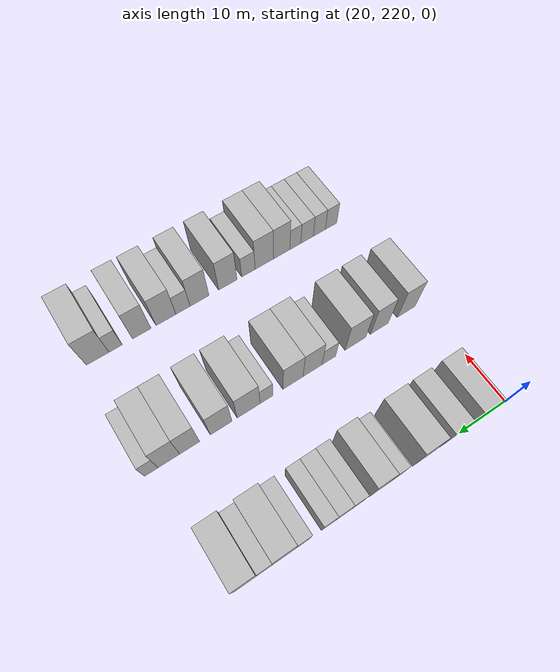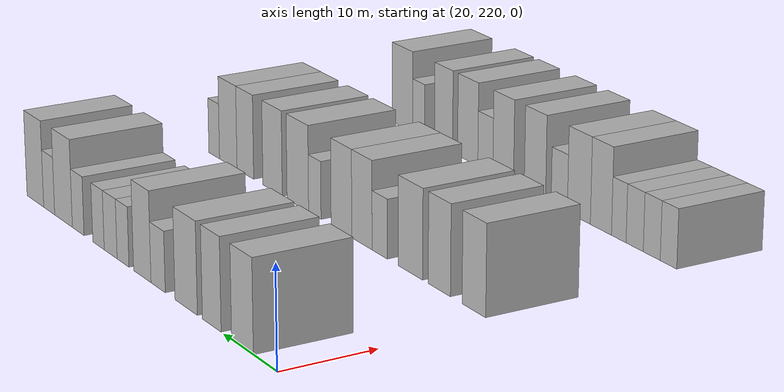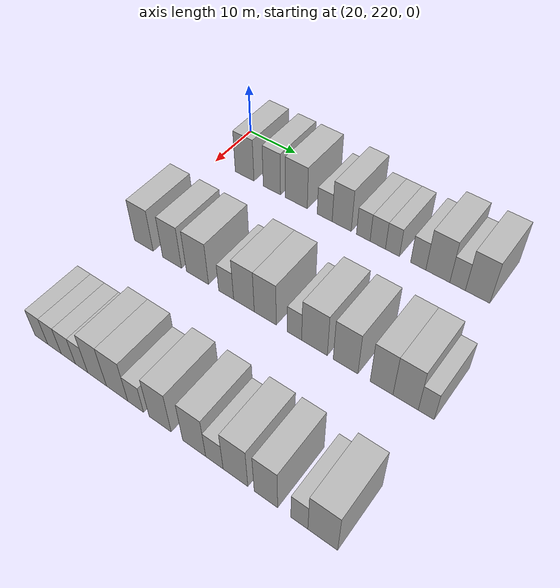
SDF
<sdf version="1.6">
 <world name="default">
  <model name="building_146">
   <static>1</static>
   <pose>25.0000 226.4195 0 0.000000 0.000000 0.000000</pose>
   <link name="link">
    <pose>0 0 4.50 0 0 0</pose>
    <collision name="collision"><geometry><box><size>10.0000 4.0685 9.0000</size></box></geometry></collision>
    <visual name="visual">
     <cast_shadows>0</cast_shadows>
     <geometry><box><size>10.0000 4.0685 9.0000</size></box></geometry>
     <material>
      <script>
       <uri>model://HANNAS_wall/materials/scripts</uri>
       <uri>model://HANNAS_wall/materials/textures</uri>
       <name>vrc/HANNAS_wall</name>
      </script>
     </material>
    </visual>
   </link>
  </model>
  <model name="building_147">
   <static>1</static>
   <pose>25.0000 232.2710 0 0.000000 0.000000 0.000000</pose>
   <link name="link">
    <pose>0 0 4.50 0 0 0</pose>
    <collision name="collision"><geometry><box><size>10.0000 3.6345 9.0000</size></box></geometry></collision>
    <visual name="visual">
     <cast_shadows>0</cast_shadows>
     <geometry><box><size>10.0000 3.6345 9.0000</size></box></geometry>
     <material>
      <script>
       <uri>model://HANNAS_wall/materials/scripts</uri>
       <uri>model://HANNAS_wall/materials/textures</uri>
       <name>vrc/HANNAS_wall</name>
      </script>
     </material>
    </visual>
   </link>
  </model>
  <model name="building_148">
   <static>1</static>
   <pose>25.0000 237.3366 0 0.000000 0.000000 0.000000</pose>
   <link name="link">
    <pose>0 0 4.50 0 0 0</pose>
    <collision name="collision"><geometry><box><size>10.0000 4.4966 9.0000</size></box></geometry></collision>
    <visual name="visual">
     <cast_shadows>0</cast_shadows>
     <geometry><box><size>10.0000 4.4966 9.0000</size></box></geometry>
     <material>
      <script>
       <uri>model://HANNAS_wall/materials/scripts</uri>
       <uri>model://HANNAS_wall/materials/textures</uri>
       <name>vrc/HANNAS_wall</name>
      </script>
     </material>
    </visual>
   </link>
  </model>
  <model name="building_149">
   <static>1</static>
   <pose>25.0000 243.0659 0 0.000000 0.000000 0.000000</pose>
   <link name="link">
    <pose>0 0 3.00 0 0 0</pose>
    <collision name="collision"><geometry><box><size>10.0000 2.9619 6.0000</size></box></geometry></collision>
    <visual name="visual">
     <cast_shadows>0</cast_shadows>
     <geometry><box><size>10.0000 2.9619 6.0000</size></box></geometry>
     <material>
      <script>
       <uri>model://HANNAS_wall/materials/scripts</uri>
       <uri>model://HANNAS_wall/materials/textures</uri>
       <name>vrc/HANNAS_wall</name>
      </script>
     </material>
    </visual>
   </link>
  </model>
  <model name="building_150">
   <static>1</static>
   <pose>25.0000 246.3970 0 0.000000 0.000000 0.000000</pose>
   <link name="link">
    <pose>0 0 4.50 0 0 0</pose>
    <collision name="collision"><geometry><box><size>10.0000 3.7003 9.0000</size></box></geometry></collision>
    <visual name="visual">
     <cast_shadows>0</cast_shadows>
     <geometry><box><size>10.0000 3.7003 9.0000</size></box></geometry>
     <material>
      <script>
       <uri>model://HANNAS_wall/materials/scripts</uri>
       <uri>model://HANNAS_wall/materials/textures</uri>
       <name>vrc/HANNAS_wall</name>
      </script>
     </material>
    </visual>
   </link>
  </model>
  <model name="building_151">
   <static>1</static>
   <pose>25.0000 250.5377 0 0.000000 0.000000 0.000000</pose>
   <link name="link">
    <pose>0 0 3.00 0 0 0</pose>
    <collision name="collision"><geometry><box><size>10.0000 2.5811 6.0000</size></box></geometry></collision>
    <visual name="visual">
     <cast_shadows>0</cast_shadows>
     <geometry><box><size>10.0000 2.5811 6.0000</size></box></geometry>
     <material>
      <script>
       <uri>model://HANNAS_wall/materials/scripts</uri>
       <uri>model://HANNAS_wall/materials/textures</uri>
       <name>vrc/HANNAS_wall</name>
      </script>
     </material>
    </visual>
   </link>
  </model>
  <model name="building_152">
   <static>1</static>
   <pose>25.0000 253.2585 0 0.000000 0.000000 0.000000</pose>
   <link name="link">
    <pose>0 0 3.00 0 0 0</pose>
    <collision name="collision"><geometry><box><size>10.0000 2.8606 6.0000</size></box></geometry></collision>
    <visual name="visual">
     <cast_shadows>0</cast_shadows>
     <geometry><box><size>10.0000 2.8606 6.0000</size></box></geometry>
     <material>
      <script>
       <uri>model://HANNAS_wall/materials/scripts</uri>
       <uri>model://HANNAS_wall/materials/textures</uri>
       <name>vrc/HANNAS_wall</name>
      </script>
     </material>
    </visual>
   </link>
  </model>
  <model name="building_153">
   <static>1</static>
   <pose>25.0000 255.9757 0 0.000000 0.000000 0.000000</pose>
   <link name="link">
    <pose>0 0 3.00 0 0 0</pose>
    <collision name="collision"><geometry><box><size>10.0000 2.5737 6.0000</size></box></geometry></collision>
    <visual name="visual">
     <cast_shadows>0</cast_shadows>
     <geometry><box><size>10.0000 2.5737 6.0000</size></box></geometry>
     <material>
      <script>
       <uri>model://HANNAS_wall/materials/scripts</uri>
       <uri>model://HANNAS_wall/materials/textures</uri>
       <name>vrc/HANNAS_wall</name>
      </script>
     </material>
    </visual>
   </link>
  </model>
  <model name="building_154">
   <static>1</static>
   <pose>25.0000 260.6151 0 0.000000 0.000000 0.000000</pose>
   <link name="link">
    <pose>0 0 3.00 0 0 0</pose>
    <collision name="collision"><geometry><box><size>10.0000 2.7052 6.0000</size></box></geometry></collision>
    <visual name="visual">
     <cast_shadows>0</cast_shadows>
     <geometry><box><size>10.0000 2.7052 6.0000</size></box></geometry>
     <material>
      <script>
       <uri>model://HANNAS_wall/materials/scripts</uri>
       <uri>model://HANNAS_wall/materials/textures</uri>
       <name>vrc/HANNAS_wall</name>
      </script>
     </material>
    </visual>
   </link>
  </model>
  <model name="building_155">
   <static>1</static>
   <pose>25.0000 264.0558 0 0.000000 0.000000 0.000000</pose>
   <link name="link">
    <pose>0 0 4.50 0 0 0</pose>
    <collision name="collision"><geometry><box><size>10.0000 4.1763 9.0000</size></box></geometry></collision>
    <visual name="visual">
     <cast_shadows>0</cast_shadows>
     <geometry><box><size>10.0000 4.1763 9.0000</size></box></geometry>
     <material>
      <script>
       <uri>model://HANNAS_wall/materials/scripts</uri>
       <uri>model://HANNAS_wall/materials/textures</uri>
       <name>vrc/HANNAS_wall</name>
      </script>
     </material>
    </visual>
   </link>
  </model>
  <model name="building_156">
   <static>1</static>
   <pose>25.0000 267.4645 0 0.000000 0.000000 0.000000</pose>
   <link name="link">
    <pose>0 0 3.00 0 0 0</pose>
    <collision name="collision"><geometry><box><size>10.0000 2.6411 6.0000</size></box></geometry></collision>
    <visual name="visual">
     <cast_shadows>0</cast_shadows>
     <geometry><box><size>10.0000 2.6411 6.0000</size></box></geometry>
     <material>
      <script>
       <uri>model://HANNAS_wall/materials/scripts</uri>
       <uri>model://HANNAS_wall/materials/textures</uri>
       <name>vrc/HANNAS_wall</name>
      </script>
     </material>
    </visual>
   </link>
  </model>
  <model name="building_157">
   <static>1</static>
   <pose>25.0000 270.8281 0 0.000000 0.000000 0.000000</pose>
   <link name="link">
    <pose>0 0 4.50 0 0 0</pose>
    <collision name="collision"><geometry><box><size>10.0000 4.0861 9.0000</size></box></geometry></collision>
    <visual name="visual">
     <cast_shadows>0</cast_shadows>
     <geometry><box><size>10.0000 4.0861 9.0000</size></box></geometry>
     <material>
      <script>
       <uri>model://HANNAS_wall/materials/scripts</uri>
       <uri>model://HANNAS_wall/materials/textures</uri>
       <name>vrc/HANNAS_wall</name>
      </script>
     </material>
    </visual>
   </link>
  </model>
  <model name="building_337">
   <static>1</static>
   <pose>47.0000 223.4899 0 0.000000 0.000000 0.000000</pose>
   <link name="link">
    <pose>0 0 4.50 0 0 0</pose>
    <collision name="collision"><geometry><box><size>10.0000 4.0040 9.0000</size></box></geometry></collision>
    <visual name="visual">
     <cast_shadows>0</cast_shadows>
     <geometry><box><size>10.0000 4.0040 9.0000</size></box></geometry>
     <material>
      <script>
       <uri>model://HANNAS_wall/materials/scripts</uri>
       <uri>model://HANNAS_wall/materials/textures</uri>
       <name>vrc/HANNAS_wall</name>
      </script>
     </material>
    </visual>
   </link>
  </model>
  <model name="building_338">
   <static>1</static>
   <pose>47.0000 229.4475 0 0.000000 0.000000 0.000000</pose>
   <link name="link">
    <pose>0 0 4.50 0 0 0</pose>
    <collision name="collision"><geometry><box><size>10.0000 3.9113 9.0000</size></box></geometry></collision>
    <visual name="visual">
     <cast_shadows>0</cast_shadows>
     <geometry><box><size>10.0000 3.9113 9.0000</size></box></geometry>
     <material>
      <script>
       <uri>model://HANNAS_wall/materials/scripts</uri>
       <uri>model://HANNAS_wall/materials/textures</uri>
       <name>vrc/HANNAS_wall</name>
      </script>
     </material>
    </visual>
   </link>
  </model>
  <model name="building_339">
   <static>1</static>
   <pose>47.0000 234.6191 0 0.000000 0.000000 0.000000</pose>
   <link name="link">
    <pose>0 0 4.50 0 0 0</pose>
    <collision name="collision"><geometry><box><size>10.0000 4.4318 9.0000</size></box></geometry></collision>
    <visual name="visual">
     <cast_shadows>0</cast_shadows>
     <geometry><box><size>10.0000 4.4318 9.0000</size></box></geometry>
     <material>
      <script>
       <uri>model://HANNAS_wall/materials/scripts</uri>
       <uri>model://HANNAS_wall/materials/textures</uri>
       <name>vrc/HANNAS_wall</name>
      </script>
     </material>
    </visual>
   </link>
  </model>
  <model name="building_340">
   <static>1</static>
   <pose>47.0000 240.2762 0 0.000000 0.000000 0.000000</pose>
   <link name="link">
    <pose>0 0 3.00 0 0 0</pose>
    <collision name="collision"><geometry><box><size>10.0000 2.8824 6.0000</size></box></geometry></collision>
    <visual name="visual">
     <cast_shadows>0</cast_shadows>
     <geometry><box><size>10.0000 2.8824 6.0000</size></box></geometry>
     <material>
      <script>
       <uri>model://HANNAS_wall/materials/scripts</uri>
       <uri>model://HANNAS_wall/materials/textures</uri>
       <name>vrc/HANNAS_wall</name>
      </script>
     </material>
    </visual>
   </link>
  </model>
  <model name="building_341">
   <static>1</static>
   <pose>47.0000 243.6648 0 0.000000 0.000000 0.000000</pose>
   <link name="link">
    <pose>0 0 4.50 0 0 0</pose>
    <collision name="collision"><geometry><box><size>10.0000 3.8947 9.0000</size></box></geometry></collision>
    <visual name="visual">
     <cast_shadows>0</cast_shadows>
     <geometry><box><size>10.0000 3.8947 9.0000</size></box></geometry>
     <material>
      <script>
       <uri>model://HANNAS_wall/materials/scripts</uri>
       <uri>model://HANNAS_wall/materials/textures</uri>
       <name>vrc/HANNAS_wall</name>
      </script>
     </material>
    </visual>
   </link>
  </model>
  <model name="building_342">
   <static>1</static>
   <pose>47.0000 247.6403 0 0.000000 0.000000 0.000000</pose>
   <link name="link">
    <pose>0 0 4.50 0 0 0</pose>
    <collision name="collision"><geometry><box><size>10.0000 4.0564 9.0000</size></box></geometry></collision>
    <visual name="visual">
     <cast_shadows>0</cast_shadows>
     <geometry><box><size>10.0000 4.0564 9.0000</size></box></geometry>
     <material>
      <script>
       <uri>model://HANNAS_wall/materials/scripts</uri>
       <uri>model://HANNAS_wall/materials/textures</uri>
       <name>vrc/HANNAS_wall</name>
      </script>
     </material>
    </visual>
   </link>
  </model>
  <model name="building_343">
   <static>1</static>
   <pose>47.0000 252.9308 0 0.000000 0.000000 0.000000</pose>
   <link name="link">
    <pose>0 0 3.00 0 0 0</pose>
    <collision name="collision"><geometry><box><size>10.0000 2.5245 6.0000</size></box></geometry></collision>
    <visual name="visual">
     <cast_shadows>0</cast_shadows>
     <geometry><box><size>10.0000 2.5245 6.0000</size></box></geometry>
     <material>
      <script>
       <uri>model://HANNAS_wall/materials/scripts</uri>
       <uri>model://HANNAS_wall/materials/textures</uri>
       <name>vrc/HANNAS_wall</name>
      </script>
     </material>
    </visual>
   </link>
  </model>
  <model name="building_344">
   <static>1</static>
   <pose>47.0000 256.4169 0 0.000000 0.000000 0.000000</pose>
   <link name="link">
    <pose>0 0 4.50 0 0 0</pose>
    <collision name="collision"><geometry><box><size>10.0000 4.4477 9.0000</size></box></geometry></collision>
    <visual name="visual">
     <cast_shadows>0</cast_shadows>
     <geometry><box><size>10.0000 4.4477 9.0000</size></box></geometry>
     <material>
      <script>
       <uri>model://HANNAS_wall/materials/scripts</uri>
       <uri>model://HANNAS_wall/materials/textures</uri>
       <name>vrc/HANNAS_wall</name>
      </script>
     </material>
    </visual>
   </link>
  </model>
  <model name="building_345">
   <static>1</static>
   <pose>47.0000 261.7018 0 0.000000 0.000000 0.000000</pose>
   <link name="link">
    <pose>0 0 4.50 0 0 0</pose>
    <collision name="collision"><geometry><box><size>10.0000 4.1223 9.0000</size></box></geometry></collision>
    <visual name="visual">
     <cast_shadows>0</cast_shadows>
     <geometry><box><size>10.0000 4.1223 9.0000</size></box></geometry>
     <material>
      <script>
       <uri>model://HANNAS_wall/materials/scripts</uri>
       <uri>model://HANNAS_wall/materials/textures</uri>
       <name>vrc/HANNAS_wall</name>
      </script>
     </material>
    </visual>
   </link>
  </model>
  <model name="building_346">
   <static>1</static>
   <pose>47.0000 267.5933 0 0.000000 0.000000 0.000000</pose>
   <link name="link">
    <pose>0 0 4.50 0 0 0</pose>
    <collision name="collision"><geometry><box><size>10.0000 3.6606 9.0000</size></box></geometry></collision>
    <visual name="visual">
     <cast_shadows>0</cast_shadows>
     <geometry><box><size>10.0000 3.6606 9.0000</size></box></geometry>
     <material>
      <script>
       <uri>model://HANNAS_wall/materials/scripts</uri>
       <uri>model://HANNAS_wall/materials/textures</uri>
       <name>vrc/HANNAS_wall</name>
      </script>
     </material>
    </visual>
   </link>
  </model>
  <model name="building_347">
   <static>1</static>
   <pose>47.0000 271.3919 0 0.000000 0.000000 0.000000</pose>
   <link name="link">
    <pose>0 0 4.50 0 0 0</pose>
    <collision name="collision"><geometry><box><size>10.0000 3.9366 9.0000</size></box></geometry></collision>
    <visual name="visual">
     <cast_shadows>0</cast_shadows>
     <geometry><box><size>10.0000 3.9366 9.0000</size></box></geometry>
     <material>
      <script>
       <uri>model://HANNAS_wall/materials/scripts</uri>
       <uri>model://HANNAS_wall/materials/textures</uri>
       <name>vrc/HANNAS_wall</name>
      </script>
     </material>
    </visual>
   </link>
  </model>
  <model name="building_348">
   <static>1</static>
   <pose>47.0000 274.5755 0 0.000000 0.000000 0.000000</pose>
   <link name="link">
    <pose>0 0 3.00 0 0 0</pose>
    <collision name="collision"><geometry><box><size>10.0000 2.4307 6.0000</size></box></geometry></collision>
    <visual name="visual">
     <cast_shadows>0</cast_shadows>
     <geometry><box><size>10.0000 2.4307 6.0000</size></box></geometry>
     <material>
      <script>
       <uri>model://HANNAS_wall/materials/scripts</uri>
       <uri>model://HANNAS_wall/materials/textures</uri>
       <name>vrc/HANNAS_wall</name>
      </script>
     </material>
    </visual>
   </link>
  </model>
  <model name="building_536">
   <static>1</static>
   <pose>69.0000 224.1173 0 0.000000 0.000000 0.000000</pose>
   <link name="link">
    <pose>0 0 3.00 0 0 0</pose>
    <collision name="collision"><geometry><box><size>10.0000 2.6482 6.0000</size></box></geometry></collision>
    <visual name="visual">
     <cast_shadows>0</cast_shadows>
     <geometry><box><size>10.0000 2.6482 6.0000</size></box></geometry>
     <material>
      <script>
       <uri>model://HANNAS_wall/materials/scripts</uri>
       <uri>model://HANNAS_wall/materials/textures</uri>
       <name>vrc/HANNAS_wall</name>
      </script>
     </material>
    </visual>
   </link>
  </model>
  <model name="building_537">
   <static>1</static>
   <pose>69.0000 226.8203 0 0.000000 0.000000 0.000000</pose>
   <link name="link">
    <pose>0 0 3.00 0 0 0</pose>
    <collision name="collision"><geometry><box><size>10.0000 2.7578 6.0000</size></box></geometry></collision>
    <visual name="visual">
     <cast_shadows>0</cast_shadows>
     <geometry><box><size>10.0000 2.7578 6.0000</size></box></geometry>
     <material>
      <script>
       <uri>model://HANNAS_wall/materials/scripts</uri>
       <uri>model://HANNAS_wall/materials/textures</uri>
       <name>vrc/HANNAS_wall</name>
      </script>
     </material>
    </visual>
   </link>
  </model>
  <model name="building_538">
   <static>1</static>
   <pose>69.0000 229.6187 0 0.000000 0.000000 0.000000</pose>
   <link name="link">
    <pose>0 0 3.00 0 0 0</pose>
    <collision name="collision"><geometry><box><size>10.0000 2.8392 6.0000</size></box></geometry></collision>
    <visual name="visual">
     <cast_shadows>0</cast_shadows>
     <geometry><box><size>10.0000 2.8392 6.0000</size></box></geometry>
     <material>
      <script>
       <uri>model://HANNAS_wall/materials/scripts</uri>
       <uri>model://HANNAS_wall/materials/textures</uri>
       <name>vrc/HANNAS_wall</name>
      </script>
     </material>
    </visual>
   </link>
  </model>
  <model name="building_539">
   <static>1</static>
   <pose>69.0000 232.2647 0 0.000000 0.000000 0.000000</pose>
   <link name="link">
    <pose>0 0 3.00 0 0 0</pose>
    <collision name="collision"><geometry><box><size>10.0000 2.4528 6.0000</size></box></geometry></collision>
    <visual name="visual">
     <cast_shadows>0</cast_shadows>
     <geometry><box><size>10.0000 2.4528 6.0000</size></box></geometry>
     <material>
      <script>
       <uri>model://HANNAS_wall/materials/scripts</uri>
       <uri>model://HANNAS_wall/materials/textures</uri>
       <name>vrc/HANNAS_wall</name>
      </script>
     </material>
    </visual>
   </link>
  </model>
  <model name="building_540">
   <static>1</static>
   <pose>69.0000 235.2964 0 0.000000 0.000000 0.000000</pose>
   <link name="link">
    <pose>0 0 4.50 0 0 0</pose>
    <collision name="collision"><geometry><box><size>10.0000 3.6105 9.0000</size></box></geometry></collision>
    <visual name="visual">
     <cast_shadows>0</cast_shadows>
     <geometry><box><size>10.0000 3.6105 9.0000</size></box></geometry>
     <material>
      <script>
       <uri>model://HANNAS_wall/materials/scripts</uri>
       <uri>model://HANNAS_wall/materials/textures</uri>
       <name>vrc/HANNAS_wall</name>
      </script>
     </material>
    </visual>
   </link>
  </model>
  <model name="building_541">
   <static>1</static>
   <pose>69.0000 239.1120 0 0.000000 0.000000 0.000000</pose>
   <link name="link">
    <pose>0 0 4.50 0 0 0</pose>
    <collision name="collision"><geometry><box><size>10.0000 4.0207 9.0000</size></box></geometry></collision>
    <visual name="visual">
     <cast_shadows>0</cast_shadows>
     <geometry><box><size>10.0000 4.0207 9.0000</size></box></geometry>
     <material>
      <script>
       <uri>model://HANNAS_wall/materials/scripts</uri>
       <uri>model://HANNAS_wall/materials/textures</uri>
       <name>vrc/HANNAS_wall</name>
      </script>
     </material>
    </visual>
   </link>
  </model>
  <model name="building_542">
   <static>1</static>
   <pose>69.0000 242.5725 0 0.000000 0.000000 0.000000</pose>
   <link name="link">
    <pose>0 0 3.00 0 0 0</pose>
    <collision name="collision"><geometry><box><size>10.0000 2.9003 6.0000</size></box></geometry></collision>
    <visual name="visual">
     <cast_shadows>0</cast_shadows>
     <geometry><box><size>10.0000 2.9003 6.0000</size></box></geometry>
     <material>
      <script>
       <uri>model://HANNAS_wall/materials/scripts</uri>
       <uri>model://HANNAS_wall/materials/textures</uri>
       <name>vrc/HANNAS_wall</name>
      </script>
     </material>
    </visual>
   </link>
  </model>
  <model name="building_543">
   <static>1</static>
   <pose>69.0000 246.9730 0 0.000000 0.000000 0.000000</pose>
   <link name="link">
    <pose>0 0 4.50 0 0 0</pose>
    <collision name="collision"><geometry><box><size>10.0000 3.9008 9.0000</size></box></geometry></collision>
    <visual name="visual">
     <cast_shadows>0</cast_shadows>
     <geometry><box><size>10.0000 3.9008 9.0000</size></box></geometry>
     <material>
      <script>
       <uri>model://HANNAS_wall/materials/scripts</uri>
       <uri>model://HANNAS_wall/materials/textures</uri>
       <name>vrc/HANNAS_wall</name>
      </script>
     </material>
    </visual>
   </link>
  </model>
  <model name="building_544">
   <static>1</static>
   <pose>69.0000 252.8753 0 0.000000 0.000000 0.000000</pose>
   <link name="link">
    <pose>0 0 4.50 0 0 0</pose>
    <collision name="collision"><geometry><box><size>10.0000 3.9038 9.0000</size></box></geometry></collision>
    <visual name="visual">
     <cast_shadows>0</cast_shadows>
     <geometry><box><size>10.0000 3.9038 9.0000</size></box></geometry>
     <material>
      <script>
       <uri>model://HANNAS_wall/materials/scripts</uri>
       <uri>model://HANNAS_wall/materials/textures</uri>
       <name>vrc/HANNAS_wall</name>
      </script>
     </material>
    </visual>
   </link>
  </model>
  <model name="building_545">
   <static>1</static>
   <pose>69.0000 256.2695 0 0.000000 0.000000 0.000000</pose>
   <link name="link">
    <pose>0 0 3.00 0 0 0</pose>
    <collision name="collision"><geometry><box><size>10.0000 2.8844 6.0000</size></box></geometry></collision>
    <visual name="visual">
     <cast_shadows>0</cast_shadows>
     <geometry><box><size>10.0000 2.8844 6.0000</size></box></geometry>
     <material>
      <script>
       <uri>model://HANNAS_wall/materials/scripts</uri>
       <uri>model://HANNAS_wall/materials/textures</uri>
       <name>vrc/HANNAS_wall</name>
      </script>
     </material>
    </visual>
   </link>
  </model>
  <model name="building_546">
   <static>1</static>
   <pose>69.0000 259.7022 0 0.000000 0.000000 0.000000</pose>
   <link name="link">
    <pose>0 0 4.50 0 0 0</pose>
    <collision name="collision"><geometry><box><size>10.0000 3.9810 9.0000</size></box></geometry></collision>
    <visual name="visual">
     <cast_shadows>0</cast_shadows>
     <geometry><box><size>10.0000 3.9810 9.0000</size></box></geometry>
     <material>
      <script>
       <uri>model://HANNAS_wall/materials/scripts</uri>
       <uri>model://HANNAS_wall/materials/textures</uri>
       <name>vrc/HANNAS_wall</name>
      </script>
     </material>
    </visual>
   </link>
  </model>
  <model name="building_547">
   <static>1</static>
   <pose>69.0000 264.5114 0 0.000000 0.000000 0.000000</pose>
   <link name="link">
    <pose>0 0 4.50 0 0 0</pose>
    <collision name="collision"><geometry><box><size>10.0000 3.6374 9.0000</size></box></geometry></collision>
    <visual name="visual">
     <cast_shadows>0</cast_shadows>
     <geometry><box><size>10.0000 3.6374 9.0000</size></box></geometry>
     <material>
      <script>
       <uri>model://HANNAS_wall/materials/scripts</uri>
       <uri>model://HANNAS_wall/materials/textures</uri>
       <name>vrc/HANNAS_wall</name>
      </script>
     </material>
    </visual>
   </link>
  </model>
  <model name="building_548">
   <static>1</static>
   <pose>69.0000 269.5938 0 0.000000 0.000000 0.000000</pose>
   <link name="link">
    <pose>0 0 3.00 0 0 0</pose>
    <collision name="collision"><geometry><box><size>10.0000 2.5275 6.0000</size></box></geometry></collision>
    <visual name="visual">
     <cast_shadows>0</cast_shadows>
     <geometry><box><size>10.0000 2.5275 6.0000</size></box></geometry>
     <material>
      <script>
       <uri>model://HANNAS_wall/materials/scripts</uri>
       <uri>model://HANNAS_wall/materials/textures</uri>
       <name>vrc/HANNAS_wall</name>
      </script>
     </material>
    </visual>
   </link>
  </model>
  <model name="building_549">
   <static>1</static>
   <pose>69.0000 273.0113 0 0.000000 0.000000 0.000000</pose>
   <link name="link">
    <pose>0 0 4.50 0 0 0</pose>
    <collision name="collision"><geometry><box><size>10.0000 4.3076 9.0000</size></box></geometry></collision>
    <visual name="visual">
     <cast_shadows>0</cast_shadows>
     <geometry><box><size>10.0000 4.3076 9.0000</size></box></geometry>
     <material>
      <script>
       <uri>model://HANNAS_wall/materials/scripts</uri>
       <uri>model://HANNAS_wall/materials/textures</uri>
       <name>vrc/HANNAS_wall</name>
      </script>
     </material>
    </visual>
   </link>
  </model>
 </world>
</sdf>
